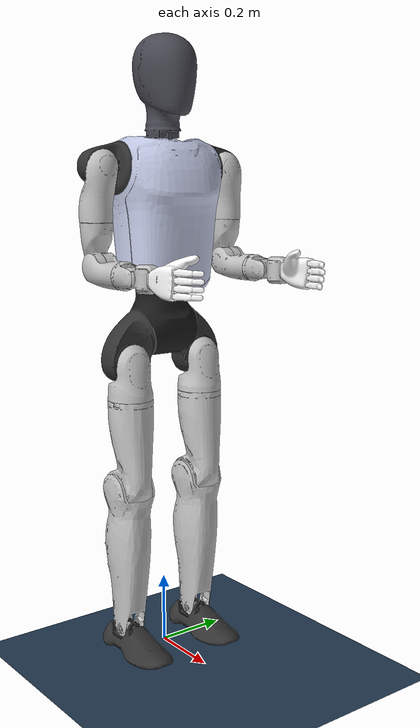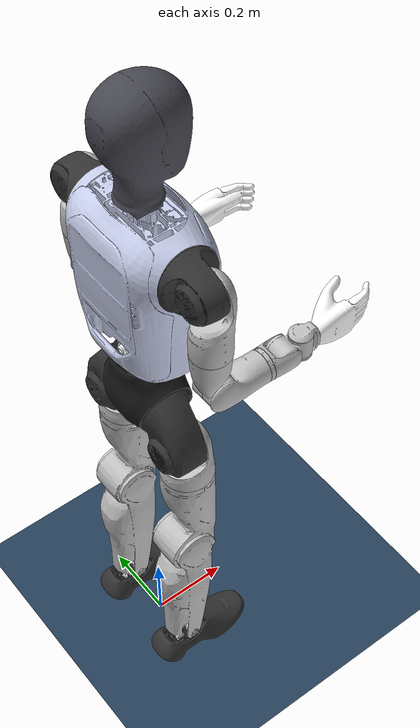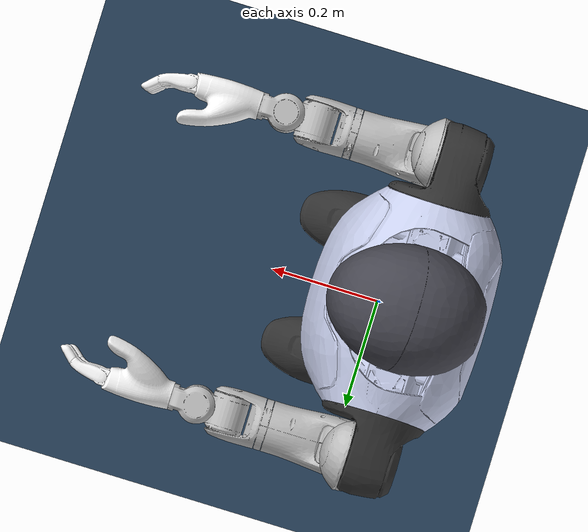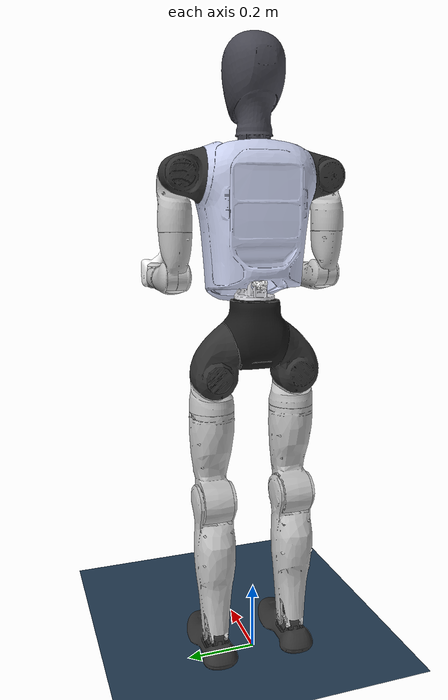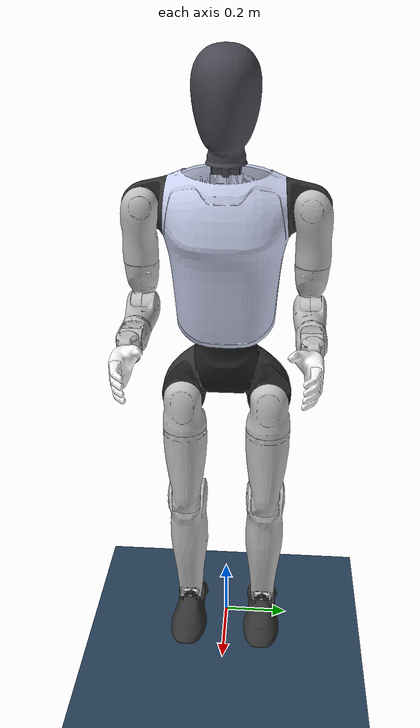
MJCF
<mujoco model="0000008889_A3_Lite_URDF-1108">
  <compiler angle="radian"/>
  <option timestep="0.002"/>

  <size nkey="1"/>

  <visual>
    <global azimuth="150" elevation="-20"/>
    <headlight ambient="0.3 0.3 0.3" diffuse="0.6 0.6 0.6" specular="0 0 0"/>
    <scale forcewidth="0.03" contactwidth="0.01" contactheight="0.02" com="1" framelength="0.6" framewidth="0.05"/>
    <rgba haze="0.15 0.25 0.35 1" com="0.502 1 0 0.5" contactpoint="1 1 0.6 0.4" contactforce="0.98 0.4 0.4 1"/>
  </visual>

  <statistic extent="1.1" center="0 0 0.55"/>

  <default>
    <geom contype="0" conaffinity="0" friction="1 1" solref="0.005"/>

    <equality solref="0.005"/>
    <default class="zhiyuan"/>
    <default class="collision">
      <geom type="capsule" contype="1" group="3"/>
      <default class="collision-left">
        <geom contype="2" conaffinity="4"/>
      </default>
      <default class="collision-right">
        <geom contype="4" conaffinity="2"/>
      </default>
    </default>
  </default>

  <asset>
    <texture type="skybox" name="skybox" builtin="gradient" mark="random" rgb1="0.2 0.3 0.4" rgb2="0 0 0" markrgb="1 1 1" random="0.001" width="1000" height="6000"/>
    <texture type="2d" name="groundplane" builtin="checker" mark="edge" rgb1="0.2 0.3 0.4" rgb2="0.1 0.2 0.3" markrgb="0.8 0.8 0.8" width="1000" height="1000"/>
    <material name="metalic silver" rgba="0.59 0.59 0.65 1"/>
    <material name="metalic black" rgba="0.235294 0.235294 0.235294 1"/>
    <material name="groundplane" texture="groundplane" texuniform="true" texrepeat="5 5" reflectance="0.2"/>

    <mesh name="pelvis_link" content_type="model/stl" file="pelvis_link.STL"/>
    <mesh name="waist_yaw_Link" content_type="model/stl" file="waist_yaw_Link.STL"/>
    <mesh name="waist_roll_Link" content_type="model/stl" file="waist_roll_Link.STL"/>
    <mesh name="torso_Link" content_type="model/stl" file="torso_Link.STL"/>
    <mesh name="head_Link" content_type="model/stl" file="head_Link.STL"/>
    <mesh name="imu_in_torso_Link" content_type="model/stl" file="imu_in_torso_Link.STL"/>
    <mesh name="left_shoulder_pitch_Link" content_type="model/stl" file="left_shoulder_pitch_Link.STL"/>
    <mesh name="left_shoulder_roll_Link" content_type="model/stl" file="left_shoulder_roll_Link.STL"/>
    <mesh name="left_shoulder_yaw_Link" content_type="model/stl" file="left_shoulder_yaw_Link.STL"/>
    <mesh name="left_elbow_Link" content_type="model/stl" file="left_elbow_Link.STL"/>
    <mesh name="left_wrist_roll_Link" content_type="model/stl" file="left_wrist_roll_Link.STL"/>
    <mesh name="left_wrist_pitch_Link" content_type="model/stl" file="left_wrist_pitch_Link.STL"/>
    <mesh name="left_wrist_yaw_Link" content_type="model/stl" file="left_wrist_yaw_Link.STL"/>
    <mesh name="left_hand_palm_Link" content_type="model/stl" file="left_hand_palm_Link.STL"/>
    <mesh name="right_shoulder_pitch_Link" content_type="model/stl" file="right_shoulder_pitch_Link.STL"/>
    <mesh name="right_shoulder_roll_Link" content_type="model/stl" file="right_shoulder_roll_Link.STL"/>
    <mesh name="right_shoulder_yaw_Link" content_type="model/stl" file="right_shoulder_yaw_Link.STL"/>
    <mesh name="right_elbow_Link" content_type="model/stl" file="right_elbow_Link.STL"/>
    <mesh name="right_wrist_roll_Link" content_type="model/stl" file="right_wrist_roll_Link.STL"/>
    <mesh name="right_wrist_pitch_Link" content_type="model/stl" file="right_wrist_pitch_Link.STL"/>
    <mesh name="right_wrist_yaw_Link" content_type="model/stl" file="right_wrist_yaw_Link.STL"/>
    <mesh name="right_hand_palm_Link" content_type="model/stl" file="right_hand_palm_Link.STL"/>
    <mesh name="imu_in_pelvis_Link" content_type="model/stl" file="imu_in_pelvis_Link.STL"/>
    <mesh name="left_hip_pitch_Link" content_type="model/stl" file="left_hip_pitch_Link.STL"/>
    <mesh name="left_hip_roll_Link" content_type="model/stl" file="left_hip_roll_Link.STL"/>
    <mesh name="left_hip_yaw_Link" content_type="model/stl" file="left_hip_yaw_Link.STL"/>
    <mesh name="left_knee_Link" content_type="model/stl" file="left_knee_Link.STL"/>
    <mesh name="left_ankle_pitch_Link" content_type="model/stl" file="left_ankle_pitch_Link.STL"/>
    <mesh name="left_ankle_roll_Link" content_type="model/stl" file="left_ankle_roll_Link.STL"/>
    <mesh name="right_hip_pitch_Link" content_type="model/stl" file="right_hip_pitch_Link.STL"/>
    <mesh name="right_hip_roll_Link" content_type="model/stl" file="right_hip_roll_Link.STL"/>
    <mesh name="right_hip_yaw_Link" content_type="model/stl" file="right_hip_yaw_Link.STL"/>
    <mesh name="right_knee_Link" content_type="model/stl" file="right_knee_Link.STL"/>
    <mesh name="right_ankle_pitch_Link" content_type="model/stl" file="right_ankle_pitch_Link.STL"/>
    <mesh name="right_ankle_roll_Link" content_type="model/stl" file="right_ankle_roll_Link.STL"/>
  </asset>

  <worldbody>
    <geom name="floor" size="0 3 0.125" type="plane" conaffinity="7" material="groundplane"/>
    <light pos="0 0 10" dir="0 0 -1" directional="true"/>
    <light name="spotlight" target="pelvis_link" pos="0 -1 2" dir="0 0 -1" mode="targetbodycom"/>
    <body name="pelvis_link" pos="0 0 1.1">
      <inertial pos="-0.00172504 0.000830241 -0.12641" quat="0.997276 0.0734874 0.00605114 -0.0019108" mass="5.01797" diaginertia="0.0246338 0.0181068 0.0155254"/>
      <joint name="floating_joint" type="free" range="-2.61799 2.61799" actuatorfrcrange="-220 220"/>
      <geom type="mesh" rgba="0.101961 0.101961 0.101961 1" mesh="pelvis_link"/>
      <geom pos="-0.00287 0 -0.21015" quat="1 0 0 0" type="mesh" rgba="0.278431 0.278431 0.317647 1" mesh="imu_in_pelvis_Link"/>
      <body name="waist_yaw_Link">
        <inertial pos="-0.00087176 -0.00013308 -0.0195765" quat="-0.00264398 0.751816 -0.00125183 0.659366" mass="0.269779" diaginertia="0.000378112 0.000287238 0.00017602"/>
        <joint name="waist_yaw_joint" pos="0 0 0" axis="0 0 1" range="-2.61799 2.61799" actuatorfrcrange="-220 220"/>
        <geom type="mesh" rgba="0.8902 0.8902 0.91373 1" mesh="waist_yaw_Link"/>
        <body name="waist_pitch_Link" pos="-0.02 0 0.005">
          <inertial pos="0 0 -0.00250026" quat="0.5 0.5 -0.5 0.5" mass="0.0883729" diaginertia="2.292e-05 1.401e-05 1.401e-05"/>
          <joint name="waist_pitch_joint" pos="0 0 0" axis="0 1 0" range="-0.488692 0.418879" actuatorfrcrange="-10 10"/>
          <geom type="mesh" rgba="1 1 1 1" mesh="waist_roll_Link"/>
          <body name="torso_Link">
            <inertial pos="0.0163581 0.00126124 0.216771" quat="0.999395 -0.0328721 0.00881248 -0.00721121" mass="19.0202" diaginertia="0.413542 0.364048 0.145957"/>
            <joint name="waist_roll_joint" pos="0 0 0" axis="1 0 0" range="-0.349066 0.349066" actuatorfrcrange="-10 10"/>
            <geom type="mesh" rgba="0.792157 0.819608 0.933333 1" mesh="torso_Link"/>
            <geom class="collision" type="mesh" mesh="torso_Link"/>
            <geom pos="0.0303 0 0.28896" quat="1 0 0 0" type="mesh" rgba="0.278431 0.278431 0.317647 1" mesh="head_Link"/>
            <geom pos="0 0 0.11185" quat="1 0 0 0" type="mesh" rgba="0.278431 0.278431 0.317647 1" mesh="imu_in_torso_Link"/>
            <body name="left_shoulder_pitch_Link" pos="0.0303 0.12 0.281524" quat="0.999048 0.0436194 0 0">
              <inertial pos="-0.00777149 0.080361 -9.251e-05" quat="0.764312 0.643184 0.0450315 0.0107214" mass="0.929224" diaginertia="0.00104564 0.000889743 0.000828335"/>
              <joint name="left_shoulder_pitch_joint" pos="0 0 0" axis="0 1 0" range="-2.87979 2.87979" actuatorfrcrange="-60 60"/>
              <geom type="mesh" rgba="0.2 0.2 0.2 1" mesh="left_shoulder_pitch_Link"/>
              <body name="left_shoulder_roll_Link" pos="0 0.0853247 0" quat="0.999048 -0.0436194 0 0">
                <inertial pos="0.00639561 0.0105654 -0.0936462" quat="0.98962 0.0440783 0.136717 -0.00425308" mass="0.870717" diaginertia="0.00226973 0.00219934 0.000618103"/>
                <joint name="left_shoulder_roll_joint" pos="0 0 0" axis="1 0 0" range="-0.0872665 2.61799" actuatorfrcrange="-60 60"/>
                <geom type="mesh" rgba="0.752941 0.752941 0.752941 1" mesh="left_shoulder_roll_Link"/>
                <body name="left_shoulder_yaw_Link" pos="0 0.012 -0.148">
                  <inertial pos="0.0101335 -0.00110861 -0.0929565" quat="0.718367 -0.0709055 -0.0493976 0.690276" mass="0.774763" diaginertia="0.00169895 0.0016872 0.000474652"/>
                  <joint name="left_shoulder_yaw_joint" pos="0 0 0" axis="0 0 1" range="-2.79253 2.79253" actuatorfrcrange="-24 24"/>
                  <geom type="mesh" rgba="0.752941 0.752941 0.752941 1" mesh="left_shoulder_yaw_Link"/>
                  <body name="left_elbow_Link" pos="0.015 0 -0.117">
                    <inertial pos="0.0661462 -0.00160836 -0.0135604" quat="-0.0102217 0.747417 0.0913155 0.65797" mass="0.779854" diaginertia="0.00116455 0.0011239 0.000532406"/>
                    <joint name="left_elbow_joint" pos="0 0 0" axis="0 1 0" range="-1.0472 2.0944" actuatorfrcrange="-24 24"/>
                    <geom type="mesh" rgba="0.752941 0.752941 0.752941 1" mesh="left_elbow_Link"/>
                    <body name="left_wrist_roll_Link" pos="0.113 0 -0.015">
                      <inertial pos="0.020843 -0.00070259 -4.661e-05" quat="0.340771 0.620094 -0.339066 0.619994" mass="0.190759" diaginertia="0.00016782 0.000138983 0.000126456"/>
                      <joint name="left_wrist_roll_joint" pos="0 0 0" axis="1 0 0" range="-2.79253 2.79253" actuatorfrcrange="-24 24"/>
                      <geom type="mesh" rgba="0.752941 0.752941 0.752941 1" mesh="left_wrist_roll_Link"/>
                      <body name="left_wrist_pitch_Link" pos="0.059 0 0">
                        <inertial pos="0.0230341 -0.00200561 -0.00197433" quat="-0.280734 0.696574 -0.245006 0.613144" mass="0.565609" diaginertia="0.000501153 0.000499059 0.000213928"/>
                        <joint name="left_wrist_pitch_joint" pos="0 0 0" axis="0 1 0" range="-1.62316 1.62316" actuatorfrcrange="-6 6"/>
                        <geom type="mesh" rgba="0.752941 0.752941 0.752941 1" mesh="left_wrist_pitch_Link"/>
                        <body name="left_wrist_yaw_Link" pos="0.046 0 0">
                          <inertial pos="0.0831948 0.00432942 0.00293438" quat="0.573609 0.39327 0.561777 0.448017" mass="0.26692" diaginertia="0.000847142 0.000725314 0.00022069"/>
                          <joint name="left_wrist_yaw_joint" pos="0 0 0" axis="0 0 1" range="-1.62316 1.62316" actuatorfrcrange="-6 6"/>
                          <geom type="mesh" rgba="0.752941 0.752941 0.752941 1" mesh="left_wrist_yaw_Link"/>
                          <geom type="mesh" rgba="1 1 1 1" mesh="left_hand_palm_Link"/>
                        </body>
                      </body>
                    </body>
                  </body>
                </body>
              </body>
            </body>
            <body name="right_shoulder_pitch_Link" pos="0.0303 -0.12 0.281524" quat="0.999048 -0.0436194 0 0">
              <inertial pos="-0.00777227 -0.0806353 -9.188e-05" quat="0.679084 0.731593 -0.0194448 -0.0568997" mass="0.929206" diaginertia="0.00104932 0.000890663 0.000828432"/>
              <joint name="right_shoulder_pitch_joint" pos="0 0 0" axis="0 1 0" range="-2.87979 2.87979" actuatorfrcrange="-60 60"/>
              <geom type="mesh" rgba="0.2 0.2 0.2 1" mesh="right_shoulder_pitch_Link"/>
              <body name="right_shoulder_roll_Link" pos="0 -0.0853247 0" quat="0.999048 0.0436194 0 0">
                <inertial pos="0.00644119 -0.010526 -0.0936448" quat="0.989613 -0.0439398 0.136753 0.00575584" mass="0.870733" diaginertia="0.00227049 0.00219832 0.000617382"/>
                <joint name="right_shoulder_roll_joint" pos="0 0 0" axis="1 0 0" range="-2.61799 0.0872665" actuatorfrcrange="-60 60"/>
                <geom type="mesh" rgba="0.752941 0.752941 0.752941 1" mesh="right_shoulder_roll_Link"/>
                <body name="right_shoulder_yaw_Link" pos="0 -0.0119985 -0.147">
                  <inertial pos="0.0101248 0.00110631 -0.0939069" quat="0.672964 -0.0508689 -0.0700644 0.734591" mass="0.774761" diaginertia="0.00169694 0.00168631 0.000473428"/>
                  <joint name="right_shoulder_yaw_joint" pos="0 0 0" axis="0 0 1" range="-2.79253 2.79253" actuatorfrcrange="-24 24"/>
                  <geom type="mesh" rgba="0.752941 0.752941 0.752941 1" mesh="right_shoulder_yaw_Link"/>
                  <body name="right_elbow_Link" pos="0.015 0 -0.118">
                    <inertial pos="0.0661275 0.00152157 -0.0134656" quat="0.0100825 0.747961 -0.0906866 0.657441" mass="0.780928" diaginertia="0.0011655 0.00112334 0.000532229"/>
                    <joint name="right_elbow_joint" pos="0 0 0" axis="0 1 0" range="-1.0472 2.0944" actuatorfrcrange="-24 24"/>
                    <geom type="mesh" rgba="0.752941 0.752941 0.752941 1" mesh="right_elbow_Link"/>
                    <body name="right_wrist_roll_Link" pos="0.113 0 -0.015">
                      <inertial pos="0.020843 0.00070259 4.661e-05" quat="0.619994 0.339066 -0.620094 0.340771" mass="0.190759" diaginertia="0.00016782 0.000138983 0.000126456"/>
                      <joint name="right_wrist_roll_joint" pos="0 0 0" axis="1 0 0" range="-2.79253 2.79253" actuatorfrcrange="-24 24"/>
                      <geom type="mesh" rgba="0.752941 0.752941 0.752941 1" mesh="right_wrist_roll_Link"/>
                      <body name="right_wrist_pitch_Link" pos="0.059 0 0">
                        <inertial pos="0.0230341 0.00200561 0.00197433" quat="-0.245006 0.613144 -0.280734 0.696574" mass="0.565609" diaginertia="0.000501153 0.000499059 0.000213928"/>
                        <joint name="right_wrist_pitch_joint" pos="0 0 0" axis="0 1 0" range="-1.62316 1.62316" actuatorfrcrange="-6 6"/>
                        <geom type="mesh" rgba="0.752941 0.752941 0.752941 1" mesh="right_wrist_pitch_Link"/>
                        <body name="right_wrist_yaw_Link" pos="0.046 0 0">
                          <inertial pos="0.0831948 0.00431716 0.00426838" quat="0.5594 0.405045 0.577531 0.435279" mass="0.26692" diaginertia="0.000844605 0.000723531 0.000219937"/>
                          <joint name="right_wrist_yaw_joint" pos="0 0 0" axis="0 0 1" range="-1.62316 1.62316" actuatorfrcrange="-6 6"/>
                          <geom type="mesh" rgba="0.752941 0.752941 0.752941 1" mesh="right_wrist_yaw_Link"/>
                          <geom type="mesh" rgba="1 1 1 1" mesh="right_hand_palm_Link"/>
                        </body>
                      </body>
                    </body>
                  </body>
                </body>
              </body>
            </body>
          </body>
        </body>
      </body>
      <body name="left_hip_pitch_Link" pos="0 0.12 -0.176454" quat="0.991445 -0.130526 0 0">
        <inertial pos="0.00267871 -0.00243539 -0.0564427" quat="0.989925 0.141081 0.0106521 0.00563997" mass="1.77895" diaginertia="0.00367875 0.00301933 0.00200903"/>
        <joint name="left_hip_pitch_joint" pos="0 0 0" axis="0 1 0" range="-2.68781 2.93215" actuatorfrcrange="-220 220"/>
        <geom type="mesh" rgba="0.2 0.2 0.2 1" mesh="left_hip_pitch_Link"/>
        <body name="left_hip_roll_Link" pos="0.0163026 0.0168285 -0.0628047" quat="0.991445 0.130526 0 0">
          <inertial pos="0.012662 -0.00178224 -0.0534708" quat="0.983422 -0.0393403 0.176873 0.0070033" mass="0.352065" diaginertia="0.000991618 0.000853074 0.000576478"/>
          <joint name="left_hip_roll_joint" pos="0 0 0" axis="1 0 0" range="-0.698132 1.22173" actuatorfrcrange="-220 220"/>
          <geom type="mesh" rgba="0.752941 0.752941 0.752941 1" mesh="left_hip_roll_Link"/>
          <body name="left_hip_yaw_Link">
            <inertial pos="-0.00612772 -0.00144301 -0.275261" quat="0.700678 0.0238877 0.0299847 0.712447" mass="4.54364" diaginertia="0.0679422 0.0664219 0.00839615"/>
            <joint name="left_hip_yaw_joint" pos="0 0 0" axis="0 0 1" range="-2.75762 2.75762" actuatorfrcrange="-220 220"/>
            <geom type="mesh" rgba="0.752941 0.752941 0.752941 1" mesh="left_hip_yaw_Link"/>
            <body name="left_knee_Link" pos="-0.0163026 0 -0.37">
              <inertial pos="-0.00317169 -0.00065704 -0.173444" quat="0.99911 0.00454426 0.0215255 -0.0359899" mass="3.07101" diaginertia="0.0380682 0.0371294 0.00498658"/>
              <joint name="left_knee_joint" pos="0 0 0" axis="0 1 0" range="-0.122173 2.44346" actuatorfrcrange="-320 320"/>
              <geom type="mesh" rgba="0.752941 0.752941 0.752941 1" mesh="left_knee_Link"/>
              <body name="left_ankle_pitch_Link" pos="0 0.000200014 -0.415">
                <inertial pos="0 0 -0.00028903" quat="0.5 0.5 -0.5 0.5" mass="0.116844" diaginertia="3.362e-05 2.714e-05 1.074e-05"/>
                <joint name="left_ankle_pitch_joint" pos="0 0 0" axis="0 1 0" range="-0.907571 0.523599" actuatorfrcrange="-10 10"/>
                <geom type="mesh" rgba="0.752941 0.752941 0.752941 1" mesh="left_ankle_pitch_Link"/>
                <body name="left_ankle_roll_Link">
                  <inertial pos="0.0145172 2.44e-06 -0.0376092" quat="2.93533e-06 0.743627 3.78776e-05 0.668594" mass="0.686654" diaginertia="0.00343289 0.00331387 0.000689982"/>
                  <joint name="left_ankle_roll_joint" pos="0 0 0" axis="1 0 0" range="-0.349066 0.349066" actuatorfrcrange="-10 10"/>
                  <geom type="mesh" rgba="0.2 0.2 0.2 1" mesh="left_ankle_roll_Link"/>
                  <geom class="collision" size="0.002" pos="0.175 0 -0.055" type="sphere"/>
                  <geom class="collision" size="0.002" pos="-0.09 0 -0.067" type="sphere"/>
                  <geom class="collision" size="0.002" pos="0.135 0.046 -0.064" type="sphere"/>
                  <geom class="collision" size="0.002" pos="0.135 -0.046 -0.064" type="sphere"/>
                  <geom class="collision" size="0.002" pos="0.065 0.053 -0.067" type="sphere"/>
                  <geom class="collision" size="0.002" pos="0.065 -0.053 -0.067" type="sphere"/>
                  <geom class="collision" size="0.002" pos="-0.055 0.045 -0.067" type="sphere"/>
                  <geom class="collision" size="0.002" pos="-0.055 -0.045 -0.067" type="sphere"/>
                </body>
              </body>
            </body>
          </body>
        </body>
      </body>
      <body name="right_hip_pitch_Link" pos="0 -0.12 -0.176454" quat="0.991445 0.130526 0 0">
        <inertial pos="0.00268023 0.00240798 -0.0564328" quat="0.989984 -0.140685 0.0102924 -0.00585303" mass="1.77802" diaginertia="0.00367521 0.00301801 0.00200643"/>
        <joint name="right_hip_pitch_joint" pos="0 0 0" axis="0 1 0" range="-2.68781 2.93215" actuatorfrcrange="-220 220"/>
        <geom type="mesh" rgba="0.2 0.2 0.2 1" mesh="right_hip_pitch_Link"/>
        <body name="right_hip_roll_Link" pos="0.0163026 -0.0168285 -0.0628047" quat="0.991445 -0.130526 0 0">
          <inertial pos="0.0126598 0.0017836 -0.0534713" quat="0.983435 0.0393323 0.176806 -0.00697535" mass="0.352044" diaginertia="0.000991531 0.000853042 0.000576476"/>
          <joint name="right_hip_roll_joint" pos="0 0 0" axis="1 0 0" range="-1.22173 0.698132" actuatorfrcrange="-220 220"/>
          <geom type="mesh" rgba="0.752941 0.752941 0.752941 1" mesh="right_hip_roll_Link"/>
          <body name="right_hip_yaw_Link">
            <inertial pos="-0.00612676 0.00126124 -0.275388" quat="0.710029 0.030692 0.0227878 0.703134" mass="4.53939" diaginertia="0.0678994 0.0663606 0.00841113"/>
            <joint name="right_hip_yaw_joint" pos="0 0 0" axis="0 0 1" range="-2.75762 2.75762" actuatorfrcrange="-220 220"/>
            <geom type="mesh" rgba="0.752941 0.752941 0.752941 1" mesh="right_hip_yaw_Link"/>
            <body name="right_knee_Link" pos="-0.0163026 0 -0.37">
              <inertial pos="-0.00320407 0.00063549 -0.173543" quat="0.999152 -0.00450857 0.0215665 0.0347871" mass="3.08106" diaginertia="0.0380958 0.0371466 0.00499981"/>
              <joint name="right_knee_joint" pos="0 0 0" axis="0 1 0" range="-0.122173 2.44346" actuatorfrcrange="-320 320"/>
              <geom type="mesh" rgba="0.752941 0.752941 0.752941 1" mesh="right_knee_Link"/>
              <body name="right_ankle_pitch_Link" pos="0 -0.000200014 -0.415">
                <inertial pos="0 0 -0.00028903" quat="0.5 0.5 -0.5 0.5" mass="0.116844" diaginertia="3.362e-05 2.714e-05 1.074e-05"/>
                <joint name="right_ankle_pitch_joint" pos="0 0 0" axis="0 1 0" range="-0.907571 0.523599" actuatorfrcrange="-10 10"/>
                <geom type="mesh" rgba="0.752941 0.752941 0.752941 1" mesh="right_ankle_pitch_Link"/>
                <body name="right_ankle_roll_Link">
                  <inertial pos="0.0145172 2.44e-06 -0.0376092" quat="2.93533e-06 0.743627 3.78776e-05 0.668594" mass="0.686654" diaginertia="0.00343289 0.00331387 0.000689982"/>
                  <joint name="right_ankle_roll_joint" pos="0 0 0" axis="1 0 0" range="-0.349066 0.349066" actuatorfrcrange="-10 10"/>
                  <geom type="mesh" rgba="0.2 0.2 0.2 1" mesh="right_ankle_roll_Link"/>
                  <geom class="collision" size="0.002" pos="0.175 0 -0.055" type="sphere"/>
                  <geom class="collision" size="0.002" pos="-0.09 0 -0.067" type="sphere"/>
                  <geom class="collision" size="0.002" pos="0.135 0.046 -0.064" type="sphere"/>
                  <geom class="collision" size="0.002" pos="0.135 -0.046 -0.064" type="sphere"/>
                  <geom class="collision" size="0.002" pos="0.065 0.053 -0.067" type="sphere"/>
                  <geom class="collision" size="0.002" pos="0.065 -0.053 -0.067" type="sphere"/>
                  <geom class="collision" size="0.002" pos="-0.055 0.045 -0.067" type="sphere"/>
                  <geom class="collision" size="0.002" pos="-0.055 -0.045 -0.067" type="sphere"/>
                </body>
              </body>
            </body>
          </body>
        </body>
      </body>
    </body>
  </worldbody>
</mujoco>
